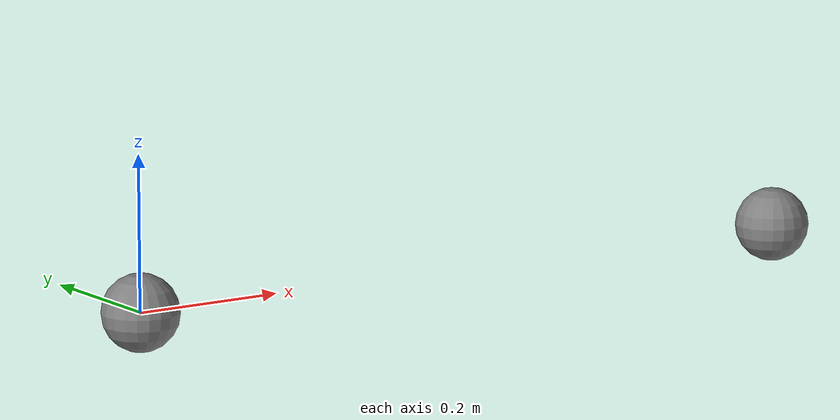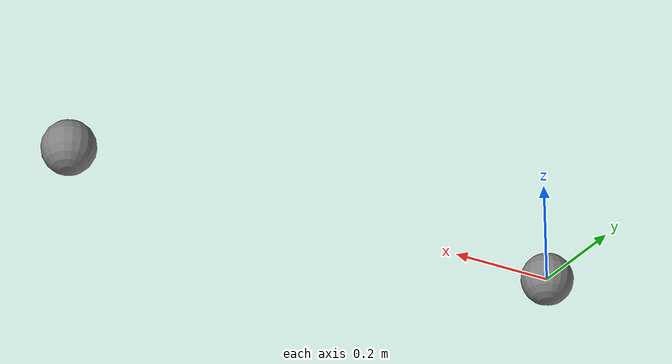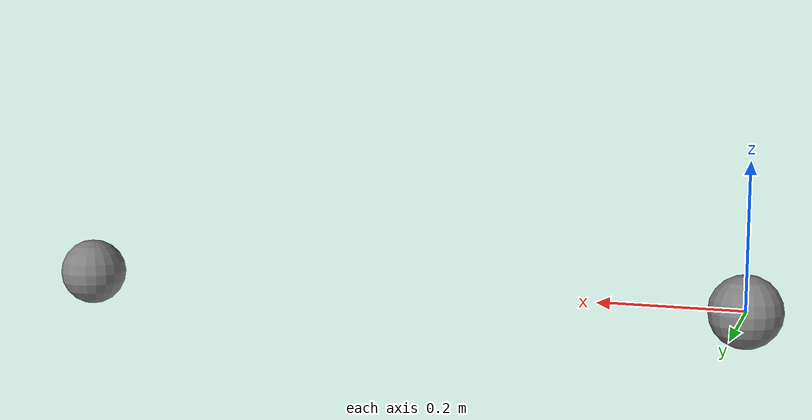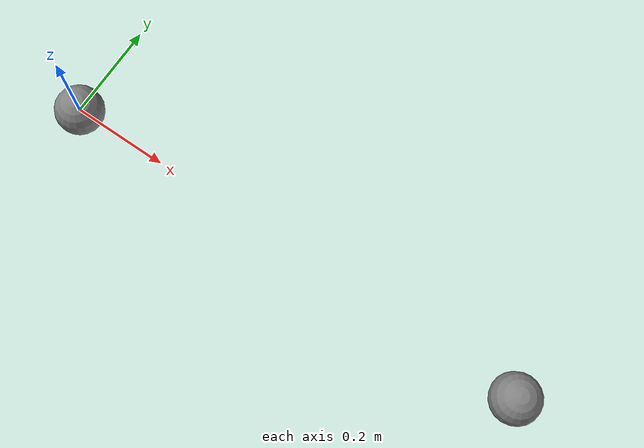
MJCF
<mujoco model="t26">
            <option gravity="0 0 0"/>
            <worldbody>
                <body name="A" pos="0 0 0">
                    <joint name="jA" type="hinge" axis="0 0 1"/>
                    <geom type="sphere" size="0.05" mass="1"/>
                </body>
                <body name="B" pos="1 0 0">
                    <joint type="free"/>
                    <geom type="sphere" size="0.05" mass="1"/>
                    <site name="sB" pos="0 0 0"/>
                </body>
            </worldbody>
            <sensor>
                <framelinvel site="sB" reftype="xbody" refname="A"/>
            </sensor>
        </mujoco>
